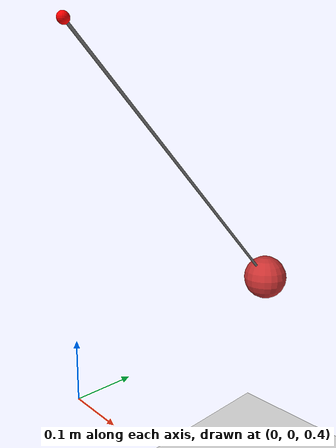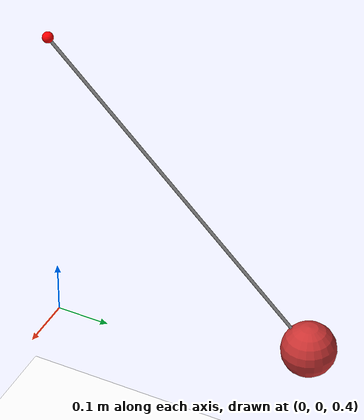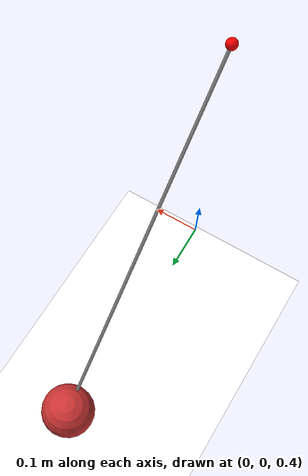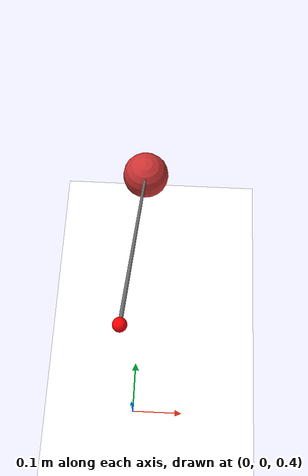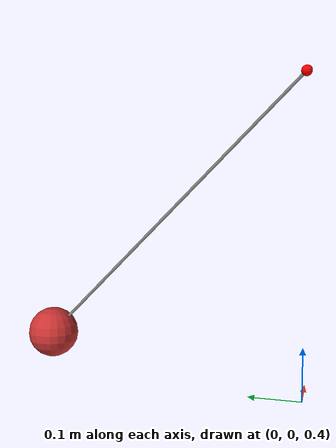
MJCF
<mujoco model="tendon_pendulum">
    <compiler angle="degree"/>
    <option gravity="0 0 -9.81"/>

    <worldbody>
        <light diffuse=".5 .5 .5" pos="0 0 5" dir="0 0 -1"/>
        <geom type="plane" size="2 2 0.1" rgba="1 1 1 1"/>
        <!-- Fixed base of the pendulum -->
        <body name="base" pos="0 0 1">
            <geom type="sphere" size="0.01" rgba="1 0 0 1" />
            <joint name="j1" type="hinge" pos="0 0 0" axis="0 1 0" limited="true" range="-180 180" />
            <site name="base_site" pos="0 0 0" size="0.01" rgba="1 0 0 1" />
        </body>

        <!-- Pendulum body -->
        <body name="pendulum" pos="0 0.5 0.5">
            <geom type="sphere"  size="0.05" rgba="0.8 0.2 0.2 1" mass="5"/>
            <joint name="j2" type="hinge" pos="0 0 0" axis="0 1 0" limited="true" range="-180 180" />
            <site name="pendulum_site" pos="0 0 0" size="0.01" rgba="0.2 0.2 0.8 1" />
        </body>
    </worldbody>

    <tendon>
        <!-- Tendon representing the cable -->
        <spatial name="cable">
            <site site="base_site" />
            <site site="pendulum_site" />
        </spatial>
    </tendon>

    <actuator>
        <motor tendon="cable" ctrlrange="-1 1" />
    </actuator>

    <sensor>
        <!-- Sensor for the joint angle (theta) -->
        <jointpos joint="j1" />
        <!-- Sensor for the joint angular velocity (theta dot) -->
        <jointvel joint="j1" />
    </sensor>
</mujoco>
